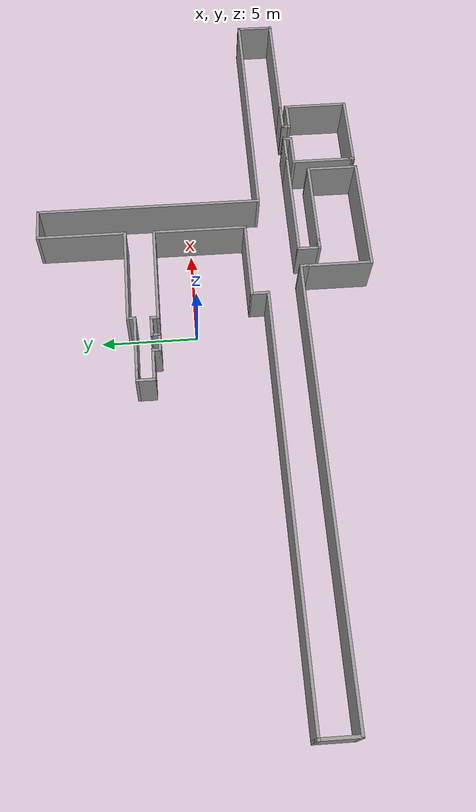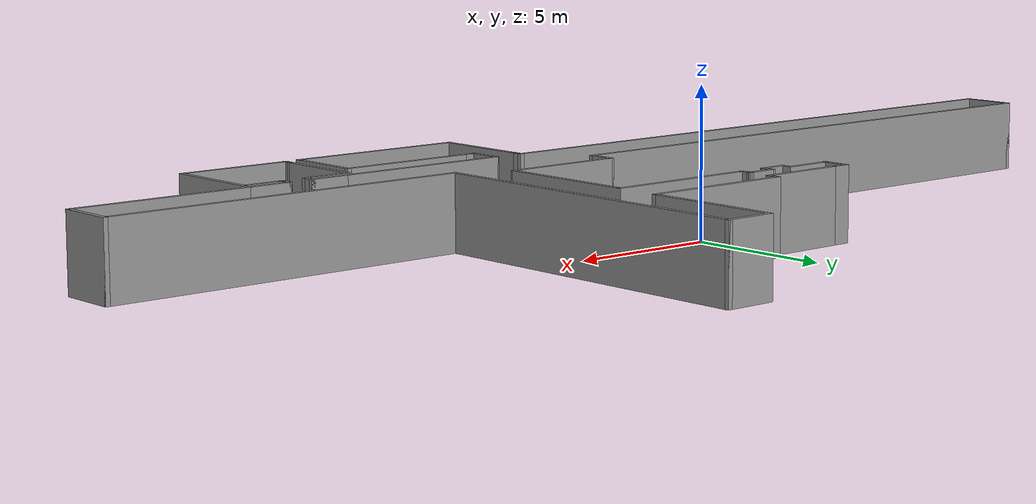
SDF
<?xml version='1.0'?>
<sdf version='1.7'>
  <model name='floor_nine'>
    <pose>-0.328358 -0.602828 0 0 -0 0</pose>
    <link name='Wall_10'>
      <collision name='Wall_10_Collision'>
        <geometry>
          <box>
            <size>1.25 0.15 2.5</size>
          </box>
        </geometry>
        <pose>0 0 1.25 0 -0 0</pose>
      </collision>
      <visual name='Wall_10_Visual'>
        <pose>0 0 1.25 0 -0 0</pose>
        <geometry>
          <box>
            <size>1.25 0.15 2.5</size>
          </box>
        </geometry>
        <material>
          <script>
            <uri>file://media/materials/scripts/gazebo.material</uri>
            <name>Gazebo/Grey</name>
          </script>
          <ambient>1 1 1 1</ambient>
        </material>
        <meta>
          <layer>0</layer>
        </meta>
      </visual>
      <pose>4.07 -5.55 0 0 -0 1.5708</pose>
    </link>
    <link name='Wall_11'>
      <collision name='Wall_11_Collision'>
        <geometry>
          <box>
            <size>6 0.15 2.5</size>
          </box>
        </geometry>
        <pose>0 0 1.25 0 -0 0</pose>
      </collision>
      <visual name='Wall_11_Visual'>
        <pose>0 0 1.25 0 -0 0</pose>
        <geometry>
          <box>
            <size>6 0.15 2.5</size>
          </box>
        </geometry>
        <material>
          <script>
            <uri>file://media/materials/scripts/gazebo.material</uri>
            <name>Gazebo/Grey</name>
          </script>
          <ambient>1 1 1 1</ambient>
        </material>
        <meta>
          <layer>0</layer>
        </meta>
      </visual>
      <pose>6.995 -5 0 0 -0 0</pose>
    </link>
    <link name='Wall_12'>
      <collision name='Wall_12_Collision'>
        <geometry>
          <box>
            <size>1.5 0.15 2.5</size>
          </box>
        </geometry>
        <pose>0 0 1.25 0 -0 0</pose>
      </collision>
      <visual name='Wall_12_Visual'>
        <pose>0 0 1.25 0 -0 0</pose>
        <geometry>
          <box>
            <size>1.5 0.15 2.5</size>
          </box>
        </geometry>
        <material>
          <script>
            <uri>file://media/materials/scripts/gazebo.material</uri>
            <name>Gazebo/Grey</name>
          </script>
          <ambient>1 1 1 1</ambient>
        </material>
        <meta>
          <layer>0</layer>
        </meta>
      </visual>
      <pose>10.595 -5 0 0 -0 0</pose>
    </link>
    <link name='Wall_13'>
      <collision name='Wall_13_Collision'>
        <geometry>
          <box>
            <size>0.5 0.15 2.5</size>
          </box>
        </geometry>
        <pose>0 0 1.25 0 -0 0</pose>
      </collision>
      <visual name='Wall_13_Visual'>
        <pose>0 0 1.25 0 -0 0</pose>
        <geometry>
          <box>
            <size>0.5 0.15 2.5</size>
          </box>
        </geometry>
        <material>
          <script>
            <uri>file://media/materials/scripts/gazebo.material</uri>
            <name>Gazebo/Grey</name>
          </script>
          <ambient>1 1 1 1</ambient>
        </material>
        <meta>
          <layer>0</layer>
        </meta>
      </visual>
      <pose>11.27 -5.175 0 0 -0 -1.5708</pose>
    </link>
    <link name='Wall_14'>
      <collision name='Wall_14_Collision'>
        <geometry>
          <box>
            <size>1.75 0.15 2.5</size>
          </box>
        </geometry>
        <pose>0 0 1.25 0 -0 0</pose>
      </collision>
      <visual name='Wall_14_Visual'>
        <pose>0 0 1.25 0 -0 0</pose>
        <geometry>
          <box>
            <size>1.75 0.15 2.5</size>
          </box>
        </geometry>
        <material>
          <script>
            <uri>file://media/materials/scripts/gazebo.material</uri>
            <name>Gazebo/Grey</name>
          </script>
          <ambient>1 1 1 1</ambient>
        </material>
        <meta>
          <layer>0</layer>
        </meta>
      </visual>
      <pose>10.47 -5.35 0 0 -0 3.14159</pose>
    </link>
    <link name='Wall_15'>
      <collision name='Wall_15_Collision'>
        <geometry>
          <box>
            <size>3.25 0.15 2.5</size>
          </box>
        </geometry>
        <pose>0 0 1.25 0 -0 0</pose>
      </collision>
      <visual name='Wall_15_Visual'>
        <pose>0 0 1.25 0 -0 0</pose>
        <geometry>
          <box>
            <size>3.25 0.15 2.5</size>
          </box>
        </geometry>
        <material>
          <script>
            <uri>file://media/materials/scripts/gazebo.material</uri>
            <name>Gazebo/Grey</name>
          </script>
          <ambient>1 1 1 1</ambient>
        </material>
        <meta>
          <layer>0</layer>
        </meta>
      </visual>
      <pose>9.67 -6.9 0 0 -0 -1.5708</pose>
    </link>
    <link name='Wall_16'>
      <collision name='Wall_16_Collision'>
        <geometry>
          <box>
            <size>0.25 0.15 2.5</size>
          </box>
        </geometry>
        <pose>0 0 1.25 0 -0 0</pose>
      </collision>
      <visual name='Wall_16_Visual'>
        <pose>0 0 1.25 0 -0 0</pose>
        <geometry>
          <box>
            <size>0.25 0.15 2.5</size>
          </box>
        </geometry>
        <material>
          <script>
            <uri>file://media/materials/scripts/gazebo.material</uri>
            <name>Gazebo/Grey</name>
          </script>
          <ambient>1 1 1 1</ambient>
        </material>
        <meta>
          <layer>0</layer>
        </meta>
      </visual>
      <pose>9.67 -8.5 0 0 -0 -1.5708</pose>
    </link>
    <link name='Wall_17'>
      <collision name='Wall_17_Collision'>
        <geometry>
          <box>
            <size>0.25 0.15 2.5</size>
          </box>
        </geometry>
        <pose>0 0 1.25 0 -0 0</pose>
      </collision>
      <visual name='Wall_17_Visual'>
        <pose>0 0 1.25 0 -0 0</pose>
        <geometry>
          <box>
            <size>0.25 0.15 2.5</size>
          </box>
        </geometry>
        <material>
          <script>
            <uri>file://media/materials/scripts/gazebo.material</uri>
            <name>Gazebo/Grey</name>
          </script>
          <ambient>1 1 1 1</ambient>
        </material>
        <meta>
          <layer>0</layer>
        </meta>
      </visual>
      <pose>9.67 -8.6 0 0 -0 -1.5708</pose>
    </link>
    <link name='Wall_18'>
      <collision name='Wall_18_Collision'>
        <geometry>
          <box>
            <size>4 0.15 2.5</size>
          </box>
        </geometry>
        <pose>0 0 1.25 0 -0 0</pose>
      </collision>
      <visual name='Wall_18_Visual'>
        <pose>0 0 1.25 0 -0 0</pose>
        <geometry>
          <box>
            <size>4 0.15 2.5</size>
          </box>
        </geometry>
        <material>
          <script>
            <uri>file://media/materials/scripts/gazebo.material</uri>
            <name>Gazebo/Grey</name>
          </script>
          <ambient>1 1 1 1</ambient>
        </material>
        <meta>
          <layer>0</layer>
        </meta>
      </visual>
      <pose>11.595 -8.65 0 0 -0 0</pose>
    </link>
    <link name='Wall_19'>
      <collision name='Wall_19_Collision'>
        <geometry>
          <box>
            <size>3.5 0.15 2.5</size>
          </box>
        </geometry>
        <pose>0 0 1.25 0 -0 0</pose>
      </collision>
      <visual name='Wall_19_Visual'>
        <pose>0 0 1.25 0 -0 0</pose>
        <geometry>
          <box>
            <size>3.5 0.15 2.5</size>
          </box>
        </geometry>
        <material>
          <script>
            <uri>file://media/materials/scripts/gazebo.material</uri>
            <name>Gazebo/Grey</name>
          </script>
          <ambient>1 1 1 1</ambient>
        </material>
        <meta>
          <layer>0</layer>
        </meta>
      </visual>
      <pose>13.52 -6.975 0 0 -0 1.5708</pose>
    </link>
    <link name='Wall_23'>
      <collision name='Wall_23_Collision'>
        <geometry>
          <box>
            <size>0.16 0.15 2.5</size>
          </box>
        </geometry>
        <pose>0 0 1.25 0 -0 0</pose>
      </collision>
      <visual name='Wall_23_Visual'>
        <pose>0 0 1.25 0 -0 0</pose>
        <geometry>
          <box>
            <size>0.16 0.15 2.5</size>
          </box>
        </geometry>
        <material>
          <script>
            <uri>file://media/materials/scripts/gazebo.material</uri>
            <name>Gazebo/Grey</name>
          </script>
          <ambient>1 1 1 1</ambient>
        </material>
        <meta>
          <layer>0</layer>
        </meta>
      </visual>
      <pose>12.125 -5.35 0 0 -0 0</pose>
    </link>
    <link name='Wall_24'>
      <collision name='Wall_24_Collision'>
        <geometry>
          <box>
            <size>1.42662 0.15 2.5</size>
          </box>
        </geometry>
        <pose>0 0 1.25 0 -0 0</pose>
      </collision>
      <visual name='Wall_24_Visual'>
        <pose>0 0 1.25 0 -0 0</pose>
        <geometry>
          <box>
            <size>1.42662 0.15 2.5</size>
          </box>
        </geometry>
        <material>
          <script>
            <uri>file://media/materials/scripts/gazebo.material</uri>
            <name>Gazebo/Grey</name>
          </script>
          <ambient>1 1 1 1</ambient>
        </material>
        <meta>
          <layer>0</layer>
        </meta>
      </visual>
      <pose>12.7683 -5.35519 0 0 -0 -0.008133</pose>
    </link>
    <link name='Wall_26'>
      <collision name='Wall_26_Collision'>
        <geometry>
          <box>
            <size>0.5 0.15 2.5</size>
          </box>
        </geometry>
        <pose>0 0 1.25 0 -0 0</pose>
      </collision>
      <visual name='Wall_26_Visual'>
        <pose>0 0 1.25 0 -0 0</pose>
        <geometry>
          <box>
            <size>0.5 0.15 2.5</size>
          </box>
        </geometry>
        <material>
          <script>
            <uri>file://media/materials/scripts/gazebo.material</uri>
            <name>Gazebo/Grey</name>
          </script>
          <ambient>1 1 1 1</ambient>
        </material>
        <meta>
          <layer>0</layer>
        </meta>
      </visual>
      <pose>12.13 -5.175 0 0 -0 1.5708</pose>
    </link>
    <link name='Wall_27'>
      <collision name='Wall_27_Collision'>
        <geometry>
          <box>
            <size>1.5 0.15 2.5</size>
          </box>
        </geometry>
        <pose>0 0 1.25 0 -0 0</pose>
      </collision>
      <visual name='Wall_27_Visual'>
        <pose>0 0 1.25 0 -0 0</pose>
        <geometry>
          <box>
            <size>1.5 0.15 2.5</size>
          </box>
        </geometry>
        <material>
          <script>
            <uri>file://media/materials/scripts/gazebo.material</uri>
            <name>Gazebo/Grey</name>
          </script>
          <ambient>1 1 1 1</ambient>
        </material>
        <meta>
          <layer>0</layer>
        </meta>
      </visual>
      <pose>12.805 -5 0 0 -0 0</pose>
    </link>
    <link name='Wall_29'>
      <collision name='Wall_29_Collision'>
        <geometry>
          <box>
            <size>22.75 0.15 2.5</size>
          </box>
        </geometry>
        <pose>0 0 1.25 0 -0 0</pose>
      </collision>
      <visual name='Wall_29_Visual'>
        <pose>0 0 1.25 0 -0 0</pose>
        <geometry>
          <box>
            <size>22.75 0.15 2.5</size>
          </box>
        </geometry>
        <material>
          <script>
            <uri>file://media/materials/scripts/gazebo.material</uri>
            <name>Gazebo/Grey</name>
          </script>
          <ambient>1 1 1 1</ambient>
        </material>
        <meta>
          <layer>0</layer>
        </meta>
      </visual>
      <pose>-8.28 -5 0 0 -0 3.14159</pose>
    </link>
    <link name='Wall_3'>
      <collision name='Wall_3_Collision'>
        <geometry>
          <box>
            <size>0.5 0.15 2.5</size>
          </box>
        </geometry>
        <pose>0 0 1.25 0 -0 0</pose>
      </collision>
      <visual name='Wall_3_Visual'>
        <pose>0 0 1.25 0 -0 0</pose>
        <geometry>
          <box>
            <size>0.5 0.15 2.5</size>
          </box>
        </geometry>
        <material>
          <script>
            <uri>file://media/materials/scripts/gazebo.material</uri>
            <name>Gazebo/Grey</name>
          </script>
          <ambient>1 1 1 1</ambient>
        </material>
        <meta>
          <layer>0</layer>
        </meta>
      </visual>
      <pose>3.02 -5.175 0 0 -0 -1.5708</pose>
    </link>
    <link name='Wall_31'>
      <collision name='Wall_31_Collision'>
        <geometry>
          <box>
            <size>2 0.15 2.5</size>
          </box>
        </geometry>
        <pose>0 0 1.25 0 -0 0</pose>
      </collision>
      <visual name='Wall_31_Visual'>
        <pose>0 0 1.25 0 -0 0</pose>
        <geometry>
          <box>
            <size>2 0.15 2.5</size>
          </box>
        </geometry>
        <material>
          <script>
            <uri>file://media/materials/scripts/gazebo.material</uri>
            <name>Gazebo/Grey</name>
          </script>
          <ambient>1 1 1 1</ambient>
        </material>
        <meta>
          <layer>0</layer>
        </meta>
      </visual>
      <pose>-19.58 -4.075 0 0 -0 1.5708</pose>
    </link>
    <link name='Wall_33'>
      <collision name='Wall_33_Collision'>
        <geometry>
          <box>
            <size>6.25 0.15 2.5</size>
          </box>
        </geometry>
        <pose>0 0 1.25 0 -0 0</pose>
      </collision>
      <visual name='Wall_33_Visual'>
        <pose>0 0 1.25 0 -0 0</pose>
        <geometry>
          <box>
            <size>6.25 0.15 2.5</size>
          </box>
        </geometry>
        <material>
          <script>
            <uri>file://media/materials/scripts/gazebo.material</uri>
            <name>Gazebo/Grey</name>
          </script>
          <ambient>1 1 1 1</ambient>
        </material>
        <meta>
          <layer>0</layer>
        </meta>
      </visual>
      <pose>16.53 -5 0 0 -0 0</pose>
    </link>
    <link name='Wall_35'>
      <collision name='Wall_35_Collision'>
        <geometry>
          <box>
            <size>2 0.15 2.5</size>
          </box>
        </geometry>
        <pose>0 0 1.25 0 -0 0</pose>
      </collision>
      <visual name='Wall_35_Visual'>
        <pose>0 0 1.25 0 -0 0</pose>
        <geometry>
          <box>
            <size>2 0.15 2.5</size>
          </box>
        </geometry>
        <material>
          <script>
            <uri>file://media/materials/scripts/gazebo.material</uri>
            <name>Gazebo/Grey</name>
          </script>
          <ambient>1 1 1 1</ambient>
        </material>
        <meta>
          <layer>0</layer>
        </meta>
      </visual>
      <pose>19.58 -4.075 0 0 -0 1.5708</pose>
    </link>
    <link name='Wall_36'>
      <collision name='Wall_36_Collision'>
        <geometry>
          <box>
            <size>12.5 0.15 2.5</size>
          </box>
        </geometry>
        <pose>0 0 1.25 0 -0 0</pose>
      </collision>
      <visual name='Wall_36_Visual'>
        <pose>0 0 1.25 0 -0 0</pose>
        <geometry>
          <box>
            <size>12.5 0.15 2.5</size>
          </box>
        </geometry>
        <material>
          <script>
            <uri>file://media/materials/scripts/gazebo.material</uri>
            <name>Gazebo/Grey</name>
          </script>
          <ambient>1 1 1 1</ambient>
        </material>
        <meta>
          <layer>0</layer>
        </meta>
      </visual>
      <pose>13.405 -3.15 0 0 -0 3.14159</pose>
    </link>
    <link name='Wall_4'>
      <collision name='Wall_4_Collision'>
        <geometry>
          <box>
            <size>3.5 0.15 2.5</size>
          </box>
        </geometry>
        <pose>0 0 1.25 0 -0 0</pose>
      </collision>
      <visual name='Wall_4_Visual'>
        <pose>0 0 1.25 0 -0 0</pose>
        <geometry>
          <box>
            <size>3.5 0.15 2.5</size>
          </box>
        </geometry>
        <material>
          <script>
            <uri>file://media/materials/scripts/gazebo.material</uri>
            <name>Gazebo/Grey</name>
          </script>
          <ambient>1 1 1 1</ambient>
        </material>
        <meta>
          <layer>0</layer>
        </meta>
      </visual>
      <pose>3.02 -7.025 0 0 -0 -1.5708</pose>
    </link>
    <link name='Wall_40'>
      <collision name='Wall_40_Collision'>
        <geometry>
          <box>
            <size>12 0.15 2.5</size>
          </box>
        </geometry>
        <pose>0 0 1.25 0 -0 0</pose>
      </collision>
      <visual name='Wall_40_Visual'>
        <pose>0 0 1.25 0 -0 0</pose>
        <geometry>
          <box>
            <size>12 0.15 2.5</size>
          </box>
        </geometry>
        <material>
          <script>
            <uri>file://media/materials/scripts/gazebo.material</uri>
            <name>Gazebo/Grey</name>
          </script>
          <ambient>1 1 1 1</ambient>
        </material>
        <meta>
          <layer>0</layer>
        </meta>
      </visual>
      <pose>7.23 2.775 0 0 -0 1.5708</pose>
    </link>
    <link name='Wall_41'>
      <collision name='Wall_41_Collision'>
        <geometry>
          <box>
            <size>1.75 0.15 2.5</size>
          </box>
        </geometry>
        <pose>0 0 1.25 0 -0 0</pose>
      </collision>
      <visual name='Wall_41_Visual'>
        <pose>0 0 1.25 0 -0 0</pose>
        <geometry>
          <box>
            <size>1.75 0.15 2.5</size>
          </box>
        </geometry>
        <material>
          <script>
            <uri>file://media/materials/scripts/gazebo.material</uri>
            <name>Gazebo/Grey</name>
          </script>
          <ambient>1 1 1 1</ambient>
        </material>
        <meta>
          <layer>0</layer>
        </meta>
      </visual>
      <pose>6.43 8.7 0 0 -0 3.14159</pose>
    </link>
    <link name='Wall_42'>
      <collision name='Wall_42_Collision'>
        <geometry>
          <box>
            <size>4.75 0.15 2.5</size>
          </box>
        </geometry>
        <pose>0 0 1.25 0 -0 0</pose>
      </collision>
      <visual name='Wall_42_Visual'>
        <pose>0 0 1.25 0 -0 0</pose>
        <geometry>
          <box>
            <size>4.75 0.15 2.5</size>
          </box>
        </geometry>
        <material>
          <script>
            <uri>file://media/materials/scripts/gazebo.material</uri>
            <name>Gazebo/Grey</name>
          </script>
          <ambient>1 1 1 1</ambient>
        </material>
        <meta>
          <layer>0</layer>
        </meta>
      </visual>
      <pose>5.63 6.4 0 0 -0 -1.5708</pose>
    </link>
    <link name='Wall_43'>
      <collision name='Wall_43_Collision'>
        <geometry>
          <box>
            <size>5.25 0.15 2.5</size>
          </box>
        </geometry>
        <pose>0 0 1.25 0 -0 0</pose>
      </collision>
      <visual name='Wall_43_Visual'>
        <pose>0 0 1.25 0 -0 0</pose>
        <geometry>
          <box>
            <size>5.25 0.15 2.5</size>
          </box>
        </geometry>
        <material>
          <script>
            <uri>file://media/materials/scripts/gazebo.material</uri>
            <name>Gazebo/Grey</name>
          </script>
          <ambient>1 1 1 1</ambient>
        </material>
        <meta>
          <layer>0</layer>
        </meta>
      </visual>
      <pose>3.08 4.1 0 0 -0 3.14159</pose>
    </link>
    <link name='Wall_45'>
      <collision name='Wall_45_Collision'>
        <geometry>
          <box>
            <size>0.5 0.15 2.5</size>
          </box>
        </geometry>
        <pose>0 0 1.25 0 -0 0</pose>
      </collision>
      <visual name='Wall_45_Visual'>
        <pose>0 0 1.25 0 -0 0</pose>
        <geometry>
          <box>
            <size>0.5 0.15 2.5</size>
          </box>
        </geometry>
        <material>
          <script>
            <uri>file://media/materials/scripts/gazebo.material</uri>
            <name>Gazebo/Grey</name>
          </script>
          <ambient>1 1 1 1</ambient>
        </material>
        <meta>
          <layer>0</layer>
        </meta>
      </visual>
      <pose>0.530001 3.925 0 0 -0 -1.5708</pose>
    </link>
    <link name='Wall_46'>
      <collision name='Wall_46_Collision'>
        <geometry>
          <box>
            <size>3 0.15 2.5</size>
          </box>
        </geometry>
        <pose>0 0 1.25 0 -0 0</pose>
      </collision>
      <visual name='Wall_46_Visual'>
        <pose>0 0 1.25 0 -0 0</pose>
        <geometry>
          <box>
            <size>3 0.15 2.5</size>
          </box>
        </geometry>
        <material>
          <script>
            <uri>file://media/materials/scripts/gazebo.material</uri>
            <name>Gazebo/Grey</name>
          </script>
          <ambient>1 1 1 1</ambient>
        </material>
        <meta>
          <layer>0</layer>
        </meta>
      </visual>
      <pose>-0.895 3.75 0 0 -0 3.14159</pose>
    </link>
    <link name='Wall_48'>
      <collision name='Wall_48_Collision'>
        <geometry>
          <box>
            <size>0.75 0.15 2.5</size>
          </box>
        </geometry>
        <pose>0 0 1.25 0 -0 0</pose>
      </collision>
      <visual name='Wall_48_Visual'>
        <pose>0 0 1.25 0 -0 0</pose>
        <geometry>
          <box>
            <size>0.75 0.15 2.5</size>
          </box>
        </geometry>
        <material>
          <script>
            <uri>file://media/materials/scripts/gazebo.material</uri>
            <name>Gazebo/Grey</name>
          </script>
          <ambient>1 1 1 1</ambient>
        </material>
        <meta>
          <layer>0</layer>
        </meta>
      </visual>
      <pose>-2.62 3.75 0 0 -0 3.14159</pose>
    </link>
    <link name='Wall_5'>
      <collision name='Wall_5_Collision'>
        <geometry>
          <box>
            <size>6.25 0.15 2.5</size>
          </box>
        </geometry>
        <pose>0 0 1.25 0 -0 0</pose>
      </collision>
      <visual name='Wall_5_Visual'>
        <pose>0 0 1.25 0 -0 0</pose>
        <geometry>
          <box>
            <size>6.25 0.15 2.5</size>
          </box>
        </geometry>
        <material>
          <script>
            <uri>file://media/materials/scripts/gazebo.material</uri>
            <name>Gazebo/Grey</name>
          </script>
          <ambient>1 1 1 1</ambient>
        </material>
        <meta>
          <layer>0</layer>
        </meta>
      </visual>
      <pose>6.07 -8.7 0 0 -0 0</pose>
    </link>
    <link name='Wall_59'>
      <collision name='Wall_59_Collision'>
        <geometry>
          <box>
            <size>1 0.15 2.5</size>
          </box>
        </geometry>
        <pose>0 0 1.25 0 -0 0</pose>
      </collision>
      <visual name='Wall_59_Visual'>
        <pose>0 0 1.25 0 -0 0</pose>
        <geometry>
          <box>
            <size>1 0.15 2.5</size>
          </box>
        </geometry>
        <material>
          <script>
            <uri>file://media/materials/scripts/gazebo.material</uri>
            <name>Gazebo/Grey</name>
          </script>
          <ambient>1 1 1 1</ambient>
        </material>
        <meta>
          <layer>0</layer>
        </meta>
      </visual>
      <pose>-2.92 3.325 0 0 -0 -1.5708</pose>
    </link>
    <link name='Wall_6'>
      <collision name='Wall_6_Collision'>
        <geometry>
          <box>
            <size>2.75 0.15 2.5</size>
          </box>
        </geometry>
        <pose>0 0 1.25 0 -0 0</pose>
      </collision>
      <visual name='Wall_6_Visual'>
        <pose>0 0 1.25 0 -0 0</pose>
        <geometry>
          <box>
            <size>2.75 0.15 2.5</size>
          </box>
        </geometry>
        <material>
          <script>
            <uri>file://media/materials/scripts/gazebo.material</uri>
            <name>Gazebo/Grey</name>
          </script>
          <ambient>1 1 1 1</ambient>
        </material>
        <meta>
          <layer>0</layer>
        </meta>
      </visual>
      <pose>9.12 -7.4 0 0 -0 1.5708</pose>
    </link>
    <link name='Wall_60'>
      <collision name='Wall_60_Collision'>
        <geometry>
          <box>
            <size>1.75 0.15 2.5</size>
          </box>
        </geometry>
        <pose>0 0 1.25 0 -0 0</pose>
      </collision>
      <visual name='Wall_60_Visual'>
        <pose>0 0 1.25 0 -0 0</pose>
        <geometry>
          <box>
            <size>1.75 0.15 2.5</size>
          </box>
        </geometry>
        <material>
          <script>
            <uri>file://media/materials/scripts/gazebo.material</uri>
            <name>Gazebo/Grey</name>
          </script>
          <ambient>1 1 1 1</ambient>
        </material>
        <meta>
          <layer>0</layer>
        </meta>
      </visual>
      <pose>-2.12 2.9 0 0 -0 0</pose>
    </link>
    <link name='Wall_61'>
      <collision name='Wall_61_Collision'>
        <geometry>
          <box>
            <size>0.5 0.15 2.5</size>
          </box>
        </geometry>
        <pose>0 0 1.25 0 -0 0</pose>
      </collision>
      <visual name='Wall_61_Visual'>
        <pose>0 0 1.25 0 -0 0</pose>
        <geometry>
          <box>
            <size>0.5 0.15 2.5</size>
          </box>
        </geometry>
        <material>
          <script>
            <uri>file://media/materials/scripts/gazebo.material</uri>
            <name>Gazebo/Grey</name>
          </script>
          <ambient>1 1 1 1</ambient>
        </material>
        <meta>
          <layer>0</layer>
        </meta>
      </visual>
      <pose>-1.32 2.725 0 0 -0 -1.5708</pose>
    </link>
    <link name='Wall_62'>
      <collision name='Wall_62_Collision'>
        <geometry>
          <box>
            <size>1 0.15 2.5</size>
          </box>
        </geometry>
        <pose>0 0 1.25 0 -0 0</pose>
      </collision>
      <visual name='Wall_62_Visual'>
        <pose>0 0 1.25 0 -0 0</pose>
        <geometry>
          <box>
            <size>1 0.15 2.5</size>
          </box>
        </geometry>
        <material>
          <script>
            <uri>file://media/materials/scripts/gazebo.material</uri>
            <name>Gazebo/Grey</name>
          </script>
          <ambient>1 1 1 1</ambient>
        </material>
        <meta>
          <layer>0</layer>
        </meta>
      </visual>
      <pose>-0.895 2.55 0 0 -0 0</pose>
    </link>
    <link name='Wall_63'>
      <collision name='Wall_63_Collision'>
        <geometry>
          <box>
            <size>0.5 0.15 2.5</size>
          </box>
        </geometry>
        <pose>0 0 1.25 0 -0 0</pose>
      </collision>
      <visual name='Wall_63_Visual'>
        <pose>0 0 1.25 0 -0 0</pose>
        <geometry>
          <box>
            <size>0.5 0.15 2.5</size>
          </box>
        </geometry>
        <material>
          <script>
            <uri>file://media/materials/scripts/gazebo.material</uri>
            <name>Gazebo/Grey</name>
          </script>
          <ambient>1 1 1 1</ambient>
        </material>
        <meta>
          <layer>0</layer>
        </meta>
      </visual>
      <pose>-0.469999 2.725 0 0 -0 1.5708</pose>
    </link>
    <link name='Wall_64'>
      <collision name='Wall_64_Collision'>
        <geometry>
          <box>
            <size>1.11278 0.15 2.5</size>
          </box>
        </geometry>
        <pose>0 0 1.25 0 -0 0</pose>
      </collision>
      <visual name='Wall_64_Visual'>
        <pose>0 0 1.25 0 -0 0</pose>
        <geometry>
          <box>
            <size>1.11278 0.15 2.5</size>
          </box>
        </geometry>
        <material>
          <script>
            <uri>file://media/materials/scripts/gazebo.material</uri>
            <name>Gazebo/Grey</name>
          </script>
          <ambient>1 1 1 1</ambient>
        </material>
        <meta>
          <layer>0</layer>
        </meta>
      </visual>
      <pose>0.011358 2.90542 0 0 -0 0.011265</pose>
    </link>
    <link name='Wall_65'>
      <collision name='Wall_65_Collision'>
        <geometry>
          <box>
            <size>0.5 0.15 2.5</size>
          </box>
        </geometry>
        <pose>0 0 1.25 0 -0 0</pose>
      </collision>
      <visual name='Wall_65_Visual'>
        <pose>0 0 1.25 0 -0 0</pose>
        <geometry>
          <box>
            <size>0.5 0.15 2.5</size>
          </box>
        </geometry>
        <material>
          <script>
            <uri>file://media/materials/scripts/gazebo.material</uri>
            <name>Gazebo/Grey</name>
          </script>
          <ambient>1 1 1 1</ambient>
        </material>
        <meta>
          <layer>0</layer>
        </meta>
      </visual>
      <pose>0.492715 2.73584 0 0 -0 -1.5708</pose>
    </link>
    <link name='Wall_66'>
      <collision name='Wall_66_Collision'>
        <geometry>
          <box>
            <size>5.25 0.15 2.5</size>
          </box>
        </geometry>
        <pose>0 0 1.25 0 -0 0</pose>
      </collision>
      <visual name='Wall_66_Visual'>
        <pose>0 0 1.25 0 -0 0</pose>
        <geometry>
          <box>
            <size>5.25 0.15 2.5</size>
          </box>
        </geometry>
        <material>
          <script>
            <uri>file://media/materials/scripts/gazebo.material</uri>
            <name>Gazebo/Grey</name>
          </script>
          <ambient>1 1 1 1</ambient>
        </material>
        <meta>
          <layer>0</layer>
        </meta>
      </visual>
      <pose>3.04271 2.56085 0 0 -0 0</pose>
    </link>
    <link name='Wall_68'>
      <collision name='Wall_68_Collision'>
        <geometry>
          <box>
            <size>21.285 0.15 2.5</size>
          </box>
        </geometry>
        <pose>0 0 1.25 0 -0 0</pose>
      </collision>
      <visual name='Wall_68_Visual'>
        <pose>0 0 1.25 0 -0 0</pose>
        <geometry>
          <box>
            <size>21.285 0.15 2.5</size>
          </box>
        </geometry>
        <material>
          <script>
            <uri>file://media/materials/scripts/gazebo.material</uri>
            <name>Gazebo/Grey</name>
          </script>
          <ambient>1 1 1 1</ambient>
        </material>
        <meta>
          <layer>0</layer>
        </meta>
      </visual>
      <pose>-9.01251 -3.15 0 0 -0 0</pose>
    </link>
    <link name='Wall_7'>
      <collision name='Wall_7_Collision'>
        <geometry>
          <box>
            <size>4.75 0.15 2.5</size>
          </box>
        </geometry>
        <pose>0 0 1.25 0 -0 0</pose>
      </collision>
      <visual name='Wall_7_Visual'>
        <pose>0 0 1.25 0 -0 0</pose>
        <geometry>
          <box>
            <size>4.75 0.15 2.5</size>
          </box>
        </geometry>
        <material>
          <script>
            <uri>file://media/materials/scripts/gazebo.material</uri>
            <name>Gazebo/Grey</name>
          </script>
          <ambient>1 1 1 1</ambient>
        </material>
        <meta>
          <layer>0</layer>
        </meta>
      </visual>
      <pose>6.82 -6.1 0 0 -0 3.14159</pose>
    </link>
    <link name='Wall_71'>
      <collision name='Wall_71_Collision'>
        <geometry>
          <box>
            <size>1 0.15 2.5</size>
          </box>
        </geometry>
        <pose>0 0 1.25 0 -0 0</pose>
      </collision>
      <visual name='Wall_71_Visual'>
        <pose>0 0 1.25 0 -0 0</pose>
        <geometry>
          <box>
            <size>1 0.15 2.5</size>
          </box>
        </geometry>
        <material>
          <script>
            <uri>file://media/materials/scripts/gazebo.material</uri>
            <name>Gazebo/Grey</name>
          </script>
          <ambient>1 1 1 1</ambient>
        </material>
        <meta>
          <layer>0</layer>
        </meta>
      </visual>
      <pose>1.55498 -2.725 0 0 -0 1.5708</pose>
    </link>
    <link name='Wall_73'>
      <collision name='Wall_73_Collision'>
        <geometry>
          <box>
            <size>5 0.15 2.5</size>
          </box>
        </geometry>
        <pose>0 0 1.25 0 -0 0</pose>
      </collision>
      <visual name='Wall_73_Visual'>
        <pose>0 0 1.25 0 -0 0</pose>
        <geometry>
          <box>
            <size>5 0.15 2.5</size>
          </box>
        </geometry>
        <material>
          <script>
            <uri>file://media/materials/scripts/gazebo.material</uri>
            <name>Gazebo/Grey</name>
          </script>
          <ambient>1 1 1 1</ambient>
        </material>
        <meta>
          <layer>0</layer>
        </meta>
      </visual>
      <pose>5.59272 0.135845 0 0 -0 -1.5708</pose>
    </link>
    <link name='Wall_74'>
      <collision name='Wall_74_Collision'>
        <geometry>
          <box>
            <size>4.18775 0.15 2.5</size>
          </box>
        </geometry>
        <pose>0 0 1.25 0 -0 0</pose>
      </collision>
      <visual name='Wall_74_Visual'>
        <pose>0 0 1.25 0 -0 0</pose>
        <geometry>
          <box>
            <size>4.18775 0.15 2.5</size>
          </box>
        </geometry>
        <material>
          <script>
            <uri>file://media/materials/scripts/gazebo.material</uri>
            <name>Gazebo/Grey</name>
          </script>
          <ambient>1 1 1 1</ambient>
        </material>
        <meta>
          <layer>0</layer>
        </meta>
      </visual>
      <pose>3.57385 -2.29458 0 0 -0 -3.13891</pose>
    </link>
    <link name='Wall_8'>
      <collision name='Wall_8_Collision'>
        <geometry>
          <box>
            <size>0.5 0.15 2.5</size>
          </box>
        </geometry>
        <pose>0 0 1.25 0 -0 0</pose>
      </collision>
      <visual name='Wall_8_Visual'>
        <pose>0 0 1.25 0 -0 0</pose>
        <geometry>
          <box>
            <size>0.5 0.15 2.5</size>
          </box>
        </geometry>
        <material>
          <script>
            <uri>file://media/materials/scripts/gazebo.material</uri>
            <name>Gazebo/Grey</name>
          </script>
          <ambient>1 1 1 1</ambient>
        </material>
        <meta>
          <layer>0</layer>
        </meta>
      </visual>
      <pose>4.345 -6.1 0 0 -0 3.14159</pose>
    </link>
    <link name='Wall_9'>
      <collision name='Wall_9_Collision'>
        <geometry>
          <box>
            <size>0.25 0.15 2.5</size>
          </box>
        </geometry>
        <pose>0 0 1.25 0 -0 0</pose>
      </collision>
      <visual name='Wall_9_Visual'>
        <pose>0 0 1.25 0 -0 0</pose>
        <geometry>
          <box>
            <size>0.25 0.15 2.5</size>
          </box>
        </geometry>
        <material>
          <script>
            <uri>file://media/materials/scripts/gazebo.material</uri>
            <name>Gazebo/Grey</name>
          </script>
          <ambient>1 1 1 1</ambient>
        </material>
        <meta>
          <layer>0</layer>
        </meta>
      </visual>
      <pose>4.12 -6.1 0 0 -0 3.14159</pose>
    </link>
    <static>1</static>
  </model>
</sdf>
